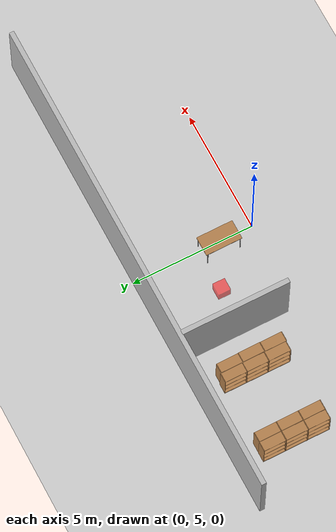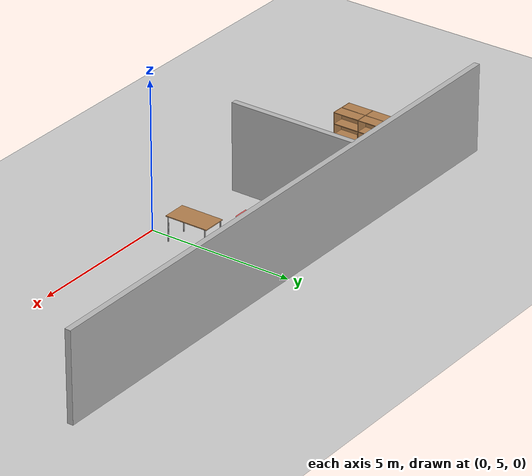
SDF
<sdf version="1.7">
 <world name="library_world">
  <model name="ground_plane">
   <static>1</static>
   <link name="link">
    <collision name="collision">
     <geometry><plane><normal>0 0 1</normal><size>100 100</size></plane></geometry>
     <surface>
      <contact><collide_bitmask>65535</collide_bitmask></contact>
      <friction><ode><mu>100</mu><mu2>50</mu2></ode></friction>
     </surface>
    </collision>
    <visual name="visual">
     <cast_shadows>0</cast_shadows>
     <geometry><plane><normal>0 0 1</normal><size>100 100</size></plane></geometry>
     <material>
      <script><uri>file://media/materials/scripts/gazebo.material</uri><name>Gazebo/Grey</name></script>
     </material>
    </visual>
   </link>
  </model>
  <model name="wall_back">
   <static>1</static>
   <link name="link"><visual name="visual"><geometry><box><size>20 0.2 3</size></box></geometry></visual></link>
   <pose>0 9.89894 1.5 0 -0 0</pose>
  </model>
  <model name="bookshelf_0_clone_2_clone">
   <static>1</static>
   <link name="link">
    <inertial><mass>1</mass></inertial>
    <collision name="back">
     <pose>0 0.005 0.6 0 -0 0</pose>
     <geometry><box><size>0.9 0.01 1.2</size></box></geometry>
    </collision>
    <visual name="visual1">
     <pose>0 0.005 0.6 0 -0 0</pose>
     <geometry><box><size>0.9 0.01 1.2</size></box></geometry>
     <material>
      <script><uri>file://media/materials/scripts/gazebo.material</uri><name>Gazebo/Wood</name></script>
     </material>
    </visual>
    <collision name="left_side">
     <pose>0.45 -0.195 0.6 0 -0 0</pose>
     <geometry><box><size>0.02 0.4 1.2</size></box></geometry>
    </collision>
    <visual name="visual2">
     <pose>0.45 -0.195 0.6 0 -0 0</pose>
     <geometry><box><size>0.02 0.4 1.2</size></box></geometry>
     <material>
      <script><uri>file://media/materials/scripts/gazebo.material</uri><name>Gazebo/Wood</name></script>
     </material>
    </visual>
    <collision name="right_side">
     <pose>-0.45 -0.195 0.6 0 -0 0</pose>
     <geometry><box><size>0.02 0.4 1.2</size></box></geometry>
    </collision>
    <visual name="visual3">
     <pose>-0.45 -0.195 0.6 0 -0 0</pose>
     <geometry><box><size>0.02 0.4 1.2</size></box></geometry>
     <material>
      <script><uri>file://media/materials/scripts/gazebo.material</uri><name>Gazebo/Wood</name></script>
     </material>
    </visual>
    <collision name="bottom">
     <pose>0 -0.195 0.03 0 -0 0</pose>
     <geometry><box><size>0.88 0.4 0.06</size></box></geometry>
    </collision>
    <visual name="visual4">
     <pose>0 -0.195 0.03 0 -0 0</pose>
     <geometry><box><size>0.88 0.4 0.06</size></box></geometry>
     <material>
      <script><uri>file://media/materials/scripts/gazebo.material</uri><name>Gazebo/Wood</name></script>
     </material>
    </visual>
    <collision name="top">
     <pose>0 -0.195 1.19 0 -0 0</pose>
     <geometry><box><size>0.88 0.4 0.02</size></box></geometry>
    </collision>
    <visual name="visual5">
     <pose>0 -0.195 1.19 0 -0 0</pose>
     <geometry><box><size>0.88 0.4 0.02</size></box></geometry>
     <material>
      <script><uri>file://media/materials/scripts/gazebo.material</uri><name>Gazebo/Wood</name></script>
     </material>
    </visual>
    <collision name="low_shelf">
     <pose>0 -0.195 0.43 0 -0 0</pose>
     <geometry><box><size>0.88 0.4 0.02</size></box></geometry>
    </collision>
    <visual name="visual6">
     <pose>0 -0.195 0.43 0 -0 0</pose>
     <geometry><box><size>0.88 0.4 0.02</size></box></geometry>
     <material>
      <script><uri>file://media/materials/scripts/gazebo.material</uri><name>Gazebo/Wood</name></script>
     </material>
    </visual>
    <collision name="high_shelf">
     <pose>0 -0.195 0.8 0 -0 0</pose>
     <geometry><box><size>0.88 0.4 0.02</size></box></geometry>
    </collision>
    <visual name="visual7">
     <pose>0 -0.195 0.8 0 -0 0</pose>
     <geometry><box><size>0.88 0.4 0.02</size></box></geometry>
     <material>
      <script><uri>file://media/materials/scripts/gazebo.material</uri><name>Gazebo/Wood</name></script>
     </material>
    </visual>
   </link>
   <pose>-7.9828 8.52336 0 0 -0 1.57381</pose>
  </model>
  <model name="bookshelf_0_clone_2_clone_0">
   <static>1</static>
   <link name="link">
    <inertial><mass>1</mass></inertial>
    <collision name="back">
     <pose>0 0.005 0.6 0 -0 0</pose>
     <geometry><box><size>0.9 0.01 1.2</size></box></geometry>
    </collision>
    <visual name="visual1">
     <pose>0 0.005 0.6 0 -0 0</pose>
     <geometry><box><size>0.9 0.01 1.2</size></box></geometry>
     <material>
      <script><uri>file://media/materials/scripts/gazebo.material</uri><name>Gazebo/Wood</name></script>
     </material>
    </visual>
    <collision name="left_side">
     <pose>0.45 -0.195 0.6 0 -0 0</pose>
     <geometry><box><size>0.02 0.4 1.2</size></box></geometry>
    </collision>
    <visual name="visual2">
     <pose>0.45 -0.195 0.6 0 -0 0</pose>
     <geometry><box><size>0.02 0.4 1.2</size></box></geometry>
     <material>
      <script><uri>file://media/materials/scripts/gazebo.material</uri><name>Gazebo/Wood</name></script>
     </material>
    </visual>
    <collision name="right_side">
     <pose>-0.45 -0.195 0.6 0 -0 0</pose>
     <geometry><box><size>0.02 0.4 1.2</size></box></geometry>
    </collision>
    <visual name="visual3">
     <pose>-0.45 -0.195 0.6 0 -0 0</pose>
     <geometry><box><size>0.02 0.4 1.2</size></box></geometry>
     <material>
      <script><uri>file://media/materials/scripts/gazebo.material</uri><name>Gazebo/Wood</name></script>
     </material>
    </visual>
    <collision name="bottom">
     <pose>0 -0.195 0.03 0 -0 0</pose>
     <geometry><box><size>0.88 0.4 0.06</size></box></geometry>
    </collision>
    <visual name="visual4">
     <pose>0 -0.195 0.03 0 -0 0</pose>
     <geometry><box><size>0.88 0.4 0.06</size></box></geometry>
     <material>
      <script><uri>file://media/materials/scripts/gazebo.material</uri><name>Gazebo/Wood</name></script>
     </material>
    </visual>
    <collision name="top">
     <pose>0 -0.195 1.19 0 -0 0</pose>
     <geometry><box><size>0.88 0.4 0.02</size></box></geometry>
    </collision>
    <visual name="visual5">
     <pose>0 -0.195 1.19 0 -0 0</pose>
     <geometry><box><size>0.88 0.4 0.02</size></box></geometry>
     <material>
      <script><uri>file://media/materials/scripts/gazebo.material</uri><name>Gazebo/Wood</name></script>
     </material>
    </visual>
    <collision name="low_shelf">
     <pose>0 -0.195 0.43 0 -0 0</pose>
     <geometry><box><size>0.88 0.4 0.02</size></box></geometry>
    </collision>
    <visual name="visual6">
     <pose>0 -0.195 0.43 0 -0 0</pose>
     <geometry><box><size>0.88 0.4 0.02</size></box></geometry>
     <material>
      <script><uri>file://media/materials/scripts/gazebo.material</uri><name>Gazebo/Wood</name></script>
     </material>
    </visual>
    <collision name="high_shelf">
     <pose>0 -0.195 0.8 0 -0 0</pose>
     <geometry><box><size>0.88 0.4 0.02</size></box></geometry>
    </collision>
    <visual name="visual7">
     <pose>0 -0.195 0.8 0 -0 0</pose>
     <geometry><box><size>0.88 0.4 0.02</size></box></geometry>
     <material>
      <script><uri>file://media/materials/scripts/gazebo.material</uri><name>Gazebo/Wood</name></script>
     </material>
    </visual>
   </link>
   <pose>-7.9819 7.61403 0 0 -0 1.57381</pose>
  </model>
  <model name="bookshelf_0_clone_2_clone_1">
   <static>1</static>
   <link name="link">
    <inertial><mass>1</mass></inertial>
    <collision name="back">
     <pose>0 0.005 0.6 0 -0 0</pose>
     <geometry><box><size>0.9 0.01 1.2</size></box></geometry>
    </collision>
    <visual name="visual1">
     <pose>0 0.005 0.6 0 -0 0</pose>
     <geometry><box><size>0.9 0.01 1.2</size></box></geometry>
     <material>
      <script><uri>file://media/materials/scripts/gazebo.material</uri><name>Gazebo/Wood</name></script>
     </material>
    </visual>
    <collision name="left_side">
     <pose>0.45 -0.195 0.6 0 -0 0</pose>
     <geometry><box><size>0.02 0.4 1.2</size></box></geometry>
    </collision>
    <visual name="visual2">
     <pose>0.45 -0.195 0.6 0 -0 0</pose>
     <geometry><box><size>0.02 0.4 1.2</size></box></geometry>
     <material>
      <script><uri>file://media/materials/scripts/gazebo.material</uri><name>Gazebo/Wood</name></script>
     </material>
    </visual>
    <collision name="right_side">
     <pose>-0.45 -0.195 0.6 0 -0 0</pose>
     <geometry><box><size>0.02 0.4 1.2</size></box></geometry>
    </collision>
    <visual name="visual3">
     <pose>-0.45 -0.195 0.6 0 -0 0</pose>
     <geometry><box><size>0.02 0.4 1.2</size></box></geometry>
     <material>
      <script><uri>file://media/materials/scripts/gazebo.material</uri><name>Gazebo/Wood</name></script>
     </material>
    </visual>
    <collision name="bottom">
     <pose>0 -0.195 0.03 0 -0 0</pose>
     <geometry><box><size>0.88 0.4 0.06</size></box></geometry>
    </collision>
    <visual name="visual4">
     <pose>0 -0.195 0.03 0 -0 0</pose>
     <geometry><box><size>0.88 0.4 0.06</size></box></geometry>
     <material>
      <script><uri>file://media/materials/scripts/gazebo.material</uri><name>Gazebo/Wood</name></script>
     </material>
    </visual>
    <collision name="top">
     <pose>0 -0.195 1.19 0 -0 0</pose>
     <geometry><box><size>0.88 0.4 0.02</size></box></geometry>
    </collision>
    <visual name="visual5">
     <pose>0 -0.195 1.19 0 -0 0</pose>
     <geometry><box><size>0.88 0.4 0.02</size></box></geometry>
     <material>
      <script><uri>file://media/materials/scripts/gazebo.material</uri><name>Gazebo/Wood</name></script>
     </material>
    </visual>
    <collision name="low_shelf">
     <pose>0 -0.195 0.43 0 -0 0</pose>
     <geometry><box><size>0.88 0.4 0.02</size></box></geometry>
    </collision>
    <visual name="visual6">
     <pose>0 -0.195 0.43 0 -0 0</pose>
     <geometry><box><size>0.88 0.4 0.02</size></box></geometry>
     <material>
      <script><uri>file://media/materials/scripts/gazebo.material</uri><name>Gazebo/Wood</name></script>
     </material>
    </visual>
    <collision name="high_shelf">
     <pose>0 -0.195 0.8 0 -0 0</pose>
     <geometry><box><size>0.88 0.4 0.02</size></box></geometry>
    </collision>
    <visual name="visual7">
     <pose>0 -0.195 0.8 0 -0 0</pose>
     <geometry><box><size>0.88 0.4 0.02</size></box></geometry>
     <material>
      <script><uri>file://media/materials/scripts/gazebo.material</uri><name>Gazebo/Wood</name></script>
     </material>
    </visual>
   </link>
   <pose>-7.98238 6.70319 0 0 -0 1.57381</pose>
  </model>
  <model name="bookshelf_0_clone_8_clone">
   <static>1</static>
   <link name="link">
    <inertial><mass>1</mass></inertial>
    <collision name="back">
     <pose>0 0.005 0.6 0 -0 0</pose>
     <geometry><box><size>0.9 0.01 1.2</size></box></geometry>
    </collision>
    <visual name="visual1">
     <pose>0 0.005 0.6 0 -0 0</pose>
     <geometry><box><size>0.9 0.01 1.2</size></box></geometry>
     <material>
      <script><uri>file://media/materials/scripts/gazebo.material</uri><name>Gazebo/Wood</name></script>
     </material>
    </visual>
    <collision name="left_side">
     <pose>0.45 -0.195 0.6 0 -0 0</pose>
     <geometry><box><size>0.02 0.4 1.2</size></box></geometry>
    </collision>
    <visual name="visual2">
     <pose>0.45 -0.195 0.6 0 -0 0</pose>
     <geometry><box><size>0.02 0.4 1.2</size></box></geometry>
     <material>
      <script><uri>file://media/materials/scripts/gazebo.material</uri><name>Gazebo/Wood</name></script>
     </material>
    </visual>
    <collision name="right_side">
     <pose>-0.45 -0.195 0.6 0 -0 0</pose>
     <geometry><box><size>0.02 0.4 1.2</size></box></geometry>
    </collision>
    <visual name="visual3">
     <pose>-0.45 -0.195 0.6 0 -0 0</pose>
     <geometry><box><size>0.02 0.4 1.2</size></box></geometry>
     <material>
      <script><uri>file://media/materials/scripts/gazebo.material</uri><name>Gazebo/Wood</name></script>
     </material>
    </visual>
    <collision name="bottom">
     <pose>0 -0.195 0.03 0 -0 0</pose>
     <geometry><box><size>0.88 0.4 0.06</size></box></geometry>
    </collision>
    <visual name="visual4">
     <pose>0 -0.195 0.03 0 -0 0</pose>
     <geometry><box><size>0.88 0.4 0.06</size></box></geometry>
     <material>
      <script><uri>file://media/materials/scripts/gazebo.material</uri><name>Gazebo/Wood</name></script>
     </material>
    </visual>
    <collision name="top">
     <pose>0 -0.195 1.19 0 -0 0</pose>
     <geometry><box><size>0.88 0.4 0.02</size></box></geometry>
    </collision>
    <visual name="visual5">
     <pose>0 -0.195 1.19 0 -0 0</pose>
     <geometry><box><size>0.88 0.4 0.02</size></box></geometry>
     <material>
      <script><uri>file://media/materials/scripts/gazebo.material</uri><name>Gazebo/Wood</name></script>
     </material>
    </visual>
    <collision name="low_shelf">
     <pose>0 -0.195 0.43 0 -0 0</pose>
     <geometry><box><size>0.88 0.4 0.02</size></box></geometry>
    </collision>
    <visual name="visual6">
     <pose>0 -0.195 0.43 0 -0 0</pose>
     <geometry><box><size>0.88 0.4 0.02</size></box></geometry>
     <material>
      <script><uri>file://media/materials/scripts/gazebo.material</uri><name>Gazebo/Wood</name></script>
     </material>
    </visual>
    <collision name="high_shelf">
     <pose>0 -0.195 0.8 0 -0 0</pose>
     <geometry><box><size>0.88 0.4 0.02</size></box></geometry>
    </collision>
    <visual name="visual7">
     <pose>0 -0.195 0.8 0 -0 0</pose>
     <geometry><box><size>0.88 0.4 0.02</size></box></geometry>
     <material>
      <script><uri>file://media/materials/scripts/gazebo.material</uri><name>Gazebo/Wood</name></script>
     </material>
    </visual>
   </link>
   <pose>-8.00188 8.53017 0 0 0 -1.57537</pose>
  </model>
  <model name="bookshelf_0_clone_8_clone_0">
   <static>1</static>
   <link name="link">
    <inertial><mass>1</mass></inertial>
    <collision name="back">
     <pose>0 0.005 0.6 0 -0 0</pose>
     <geometry><box><size>0.9 0.01 1.2</size></box></geometry>
    </collision>
    <visual name="visual1">
     <pose>0 0.005 0.6 0 -0 0</pose>
     <geometry><box><size>0.9 0.01 1.2</size></box></geometry>
     <material>
      <script><uri>file://media/materials/scripts/gazebo.material</uri><name>Gazebo/Wood</name></script>
     </material>
    </visual>
    <collision name="left_side">
     <pose>0.45 -0.195 0.6 0 -0 0</pose>
     <geometry><box><size>0.02 0.4 1.2</size></box></geometry>
    </collision>
    <visual name="visual2">
     <pose>0.45 -0.195 0.6 0 -0 0</pose>
     <geometry><box><size>0.02 0.4 1.2</size></box></geometry>
     <material>
      <script><uri>file://media/materials/scripts/gazebo.material</uri><name>Gazebo/Wood</name></script>
     </material>
    </visual>
    <collision name="right_side">
     <pose>-0.45 -0.195 0.6 0 -0 0</pose>
     <geometry><box><size>0.02 0.4 1.2</size></box></geometry>
    </collision>
    <visual name="visual3">
     <pose>-0.45 -0.195 0.6 0 -0 0</pose>
     <geometry><box><size>0.02 0.4 1.2</size></box></geometry>
     <material>
      <script><uri>file://media/materials/scripts/gazebo.material</uri><name>Gazebo/Wood</name></script>
     </material>
    </visual>
    <collision name="bottom">
     <pose>0 -0.195 0.03 0 -0 0</pose>
     <geometry><box><size>0.88 0.4 0.06</size></box></geometry>
    </collision>
    <visual name="visual4">
     <pose>0 -0.195 0.03 0 -0 0</pose>
     <geometry><box><size>0.88 0.4 0.06</size></box></geometry>
     <material>
      <script><uri>file://media/materials/scripts/gazebo.material</uri><name>Gazebo/Wood</name></script>
     </material>
    </visual>
    <collision name="top">
     <pose>0 -0.195 1.19 0 -0 0</pose>
     <geometry><box><size>0.88 0.4 0.02</size></box></geometry>
    </collision>
    <visual name="visual5">
     <pose>0 -0.195 1.19 0 -0 0</pose>
     <geometry><box><size>0.88 0.4 0.02</size></box></geometry>
     <material>
      <script><uri>file://media/materials/scripts/gazebo.material</uri><name>Gazebo/Wood</name></script>
     </material>
    </visual>
    <collision name="low_shelf">
     <pose>0 -0.195 0.43 0 -0 0</pose>
     <geometry><box><size>0.88 0.4 0.02</size></box></geometry>
    </collision>
    <visual name="visual6">
     <pose>0 -0.195 0.43 0 -0 0</pose>
     <geometry><box><size>0.88 0.4 0.02</size></box></geometry>
     <material>
      <script><uri>file://media/materials/scripts/gazebo.material</uri><name>Gazebo/Wood</name></script>
     </material>
    </visual>
    <collision name="high_shelf">
     <pose>0 -0.195 0.8 0 -0 0</pose>
     <geometry><box><size>0.88 0.4 0.02</size></box></geometry>
    </collision>
    <visual name="visual7">
     <pose>0 -0.195 0.8 0 -0 0</pose>
     <geometry><box><size>0.88 0.4 0.02</size></box></geometry>
     <material>
      <script><uri>file://media/materials/scripts/gazebo.material</uri><name>Gazebo/Wood</name></script>
     </material>
    </visual>
   </link>
   <pose>-8.00429 7.61626 0 0 0 -1.57537</pose>
  </model>
  <model name="bookshelf_0_clone_8_clone_1">
   <static>1</static>
   <link name="link">
    <inertial><mass>1</mass></inertial>
    <collision name="back">
     <pose>0 0.005 0.6 0 -0 0</pose>
     <geometry><box><size>0.9 0.01 1.2</size></box></geometry>
    </collision>
    <visual name="visual1">
     <pose>0 0.005 0.6 0 -0 0</pose>
     <geometry><box><size>0.9 0.01 1.2</size></box></geometry>
     <material>
      <script><uri>file://media/materials/scripts/gazebo.material</uri><name>Gazebo/Wood</name></script>
     </material>
    </visual>
    <collision name="left_side">
     <pose>0.45 -0.195 0.6 0 -0 0</pose>
     <geometry><box><size>0.02 0.4 1.2</size></box></geometry>
    </collision>
    <visual name="visual2">
     <pose>0.45 -0.195 0.6 0 -0 0</pose>
     <geometry><box><size>0.02 0.4 1.2</size></box></geometry>
     <material>
      <script><uri>file://media/materials/scripts/gazebo.material</uri><name>Gazebo/Wood</name></script>
     </material>
    </visual>
    <collision name="right_side">
     <pose>-0.45 -0.195 0.6 0 -0 0</pose>
     <geometry><box><size>0.02 0.4 1.2</size></box></geometry>
    </collision>
    <visual name="visual3">
     <pose>-0.45 -0.195 0.6 0 -0 0</pose>
     <geometry><box><size>0.02 0.4 1.2</size></box></geometry>
     <material>
      <script><uri>file://media/materials/scripts/gazebo.material</uri><name>Gazebo/Wood</name></script>
     </material>
    </visual>
    <collision name="bottom">
     <pose>0 -0.195 0.03 0 -0 0</pose>
     <geometry><box><size>0.88 0.4 0.06</size></box></geometry>
    </collision>
    <visual name="visual4">
     <pose>0 -0.195 0.03 0 -0 0</pose>
     <geometry><box><size>0.88 0.4 0.06</size></box></geometry>
     <material>
      <script><uri>file://media/materials/scripts/gazebo.material</uri><name>Gazebo/Wood</name></script>
     </material>
    </visual>
    <collision name="top">
     <pose>0 -0.195 1.19 0 -0 0</pose>
     <geometry><box><size>0.88 0.4 0.02</size></box></geometry>
    </collision>
    <visual name="visual5">
     <pose>0 -0.195 1.19 0 -0 0</pose>
     <geometry><box><size>0.88 0.4 0.02</size></box></geometry>
     <material>
      <script><uri>file://media/materials/scripts/gazebo.material</uri><name>Gazebo/Wood</name></script>
     </material>
    </visual>
    <collision name="low_shelf">
     <pose>0 -0.195 0.43 0 -0 0</pose>
     <geometry><box><size>0.88 0.4 0.02</size></box></geometry>
    </collision>
    <visual name="visual6">
     <pose>0 -0.195 0.43 0 -0 0</pose>
     <geometry><box><size>0.88 0.4 0.02</size></box></geometry>
     <material>
      <script><uri>file://media/materials/scripts/gazebo.material</uri><name>Gazebo/Wood</name></script>
     </material>
    </visual>
    <collision name="high_shelf">
     <pose>0 -0.195 0.8 0 -0 0</pose>
     <geometry><box><size>0.88 0.4 0.02</size></box></geometry>
    </collision>
    <visual name="visual7">
     <pose>0 -0.195 0.8 0 -0 0</pose>
     <geometry><box><size>0.88 0.4 0.02</size></box></geometry>
     <material>
      <script><uri>file://media/materials/scripts/gazebo.material</uri><name>Gazebo/Wood</name></script>
     </material>
    </visual>
   </link>
   <pose>-8.00535 6.7085 0 0 0 -1.57537</pose>
  </model>
  <model name="bookshelf_0_clone_8_clone_4">
   <static>1</static>
   <link name="link">
    <inertial><mass>1</mass></inertial>
    <collision name="back">
     <pose>0 0.005 0.6 0 -0 0</pose>
     <geometry><box><size>0.9 0.01 1.2</size></box></geometry>
    </collision>
    <visual name="visual1">
     <pose>0 0.005 0.6 0 -0 0</pose>
     <geometry><box><size>0.9 0.01 1.2</size></box></geometry>
     <material>
      <script><uri>file://media/materials/scripts/gazebo.material</uri><name>Gazebo/Wood</name></script>
     </material>
    </visual>
    <collision name="left_side">
     <pose>0.45 -0.195 0.6 0 -0 0</pose>
     <geometry><box><size>0.02 0.4 1.2</size></box></geometry>
    </collision>
    <visual name="visual2">
     <pose>0.45 -0.195 0.6 0 -0 0</pose>
     <geometry><box><size>0.02 0.4 1.2</size></box></geometry>
     <material>
      <script><uri>file://media/materials/scripts/gazebo.material</uri><name>Gazebo/Wood</name></script>
     </material>
    </visual>
    <collision name="right_side">
     <pose>-0.45 -0.195 0.6 0 -0 0</pose>
     <geometry><box><size>0.02 0.4 1.2</size></box></geometry>
    </collision>
    <visual name="visual3">
     <pose>-0.45 -0.195 0.6 0 -0 0</pose>
     <geometry><box><size>0.02 0.4 1.2</size></box></geometry>
     <material>
      <script><uri>file://media/materials/scripts/gazebo.material</uri><name>Gazebo/Wood</name></script>
     </material>
    </visual>
    <collision name="bottom">
     <pose>0 -0.195 0.03 0 -0 0</pose>
     <geometry><box><size>0.88 0.4 0.06</size></box></geometry>
    </collision>
    <visual name="visual4">
     <pose>0 -0.195 0.03 0 -0 0</pose>
     <geometry><box><size>0.88 0.4 0.06</size></box></geometry>
     <material>
      <script><uri>file://media/materials/scripts/gazebo.material</uri><name>Gazebo/Wood</name></script>
     </material>
    </visual>
    <collision name="top">
     <pose>0 -0.195 1.19 0 -0 0</pose>
     <geometry><box><size>0.88 0.4 0.02</size></box></geometry>
    </collision>
    <visual name="visual5">
     <pose>0 -0.195 1.19 0 -0 0</pose>
     <geometry><box><size>0.88 0.4 0.02</size></box></geometry>
     <material>
      <script><uri>file://media/materials/scripts/gazebo.material</uri><name>Gazebo/Wood</name></script>
     </material>
    </visual>
    <collision name="low_shelf">
     <pose>0 -0.195 0.43 0 -0 0</pose>
     <geometry><box><size>0.88 0.4 0.02</size></box></geometry>
    </collision>
    <visual name="visual6">
     <pose>0 -0.195 0.43 0 -0 0</pose>
     <geometry><box><size>0.88 0.4 0.02</size></box></geometry>
     <material>
      <script><uri>file://media/materials/scripts/gazebo.material</uri><name>Gazebo/Wood</name></script>
     </material>
    </visual>
    <collision name="high_shelf">
     <pose>0 -0.195 0.8 0 -0 0</pose>
     <geometry><box><size>0.88 0.4 0.02</size></box></geometry>
    </collision>
    <visual name="visual7">
     <pose>0 -0.195 0.8 0 -0 0</pose>
     <geometry><box><size>0.88 0.4 0.02</size></box></geometry>
     <material>
      <script><uri>file://media/materials/scripts/gazebo.material</uri><name>Gazebo/Wood</name></script>
     </material>
    </visual>
   </link>
   <pose>-5.00485 8.53788 0 0 0 -1.57537</pose>
  </model>
  <model name="bookshelf_0_clone_8_clone_5">
   <static>1</static>
   <link name="link">
    <inertial><mass>1</mass></inertial>
    <collision name="back">
     <pose>0 0.005 0.6 0 -0 0</pose>
     <geometry><box><size>0.9 0.01 1.2</size></box></geometry>
    </collision>
    <visual name="visual1">
     <pose>0 0.005 0.6 0 -0 0</pose>
     <geometry><box><size>0.9 0.01 1.2</size></box></geometry>
     <material>
      <script><uri>file://media/materials/scripts/gazebo.material</uri><name>Gazebo/Wood</name></script>
     </material>
    </visual>
    <collision name="left_side">
     <pose>0.45 -0.195 0.6 0 -0 0</pose>
     <geometry><box><size>0.02 0.4 1.2</size></box></geometry>
    </collision>
    <visual name="visual2">
     <pose>0.45 -0.195 0.6 0 -0 0</pose>
     <geometry><box><size>0.02 0.4 1.2</size></box></geometry>
     <material>
      <script><uri>file://media/materials/scripts/gazebo.material</uri><name>Gazebo/Wood</name></script>
     </material>
    </visual>
    <collision name="right_side">
     <pose>-0.45 -0.195 0.6 0 -0 0</pose>
     <geometry><box><size>0.02 0.4 1.2</size></box></geometry>
    </collision>
    <visual name="visual3">
     <pose>-0.45 -0.195 0.6 0 -0 0</pose>
     <geometry><box><size>0.02 0.4 1.2</size></box></geometry>
     <material>
      <script><uri>file://media/materials/scripts/gazebo.material</uri><name>Gazebo/Wood</name></script>
     </material>
    </visual>
    <collision name="bottom">
     <pose>0 -0.195 0.03 0 -0 0</pose>
     <geometry><box><size>0.88 0.4 0.06</size></box></geometry>
    </collision>
    <visual name="visual4">
     <pose>0 -0.195 0.03 0 -0 0</pose>
     <geometry><box><size>0.88 0.4 0.06</size></box></geometry>
     <material>
      <script><uri>file://media/materials/scripts/gazebo.material</uri><name>Gazebo/Wood</name></script>
     </material>
    </visual>
    <collision name="top">
     <pose>0 -0.195 1.19 0 -0 0</pose>
     <geometry><box><size>0.88 0.4 0.02</size></box></geometry>
    </collision>
    <visual name="visual5">
     <pose>0 -0.195 1.19 0 -0 0</pose>
     <geometry><box><size>0.88 0.4 0.02</size></box></geometry>
     <material>
      <script><uri>file://media/materials/scripts/gazebo.material</uri><name>Gazebo/Wood</name></script>
     </material>
    </visual>
    <collision name="low_shelf">
     <pose>0 -0.195 0.43 0 -0 0</pose>
     <geometry><box><size>0.88 0.4 0.02</size></box></geometry>
    </collision>
    <visual name="visual6">
     <pose>0 -0.195 0.43 0 -0 0</pose>
     <geometry><box><size>0.88 0.4 0.02</size></box></geometry>
     <material>
      <script><uri>file://media/materials/scripts/gazebo.material</uri><name>Gazebo/Wood</name></script>
     </material>
    </visual>
    <collision name="high_shelf">
     <pose>0 -0.195 0.8 0 -0 0</pose>
     <geometry><box><size>0.88 0.4 0.02</size></box></geometry>
    </collision>
    <visual name="visual7">
     <pose>0 -0.195 0.8 0 -0 0</pose>
     <geometry><box><size>0.88 0.4 0.02</size></box></geometry>
     <material>
      <script><uri>file://media/materials/scripts/gazebo.material</uri><name>Gazebo/Wood</name></script>
     </material>
    </visual>
   </link>
   <pose>-5.00895 7.64 0 0 0 -1.57537</pose>
  </model>
  <model name="bookshelf_0_clone_8_clone_6">
   <static>1</static>
   <link name="link">
    <inertial><mass>1</mass></inertial>
    <collision name="back">
     <pose>0 0.005 0.6 0 -0 0</pose>
     <geometry><box><size>0.9 0.01 1.2</size></box></geometry>
    </collision>
    <visual name="visual1">
     <pose>0 0.005 0.6 0 -0 0</pose>
     <geometry><box><size>0.9 0.01 1.2</size></box></geometry>
     <material>
      <script><uri>file://media/materials/scripts/gazebo.material</uri><name>Gazebo/Wood</name></script>
     </material>
    </visual>
    <collision name="left_side">
     <pose>0.45 -0.195 0.6 0 -0 0</pose>
     <geometry><box><size>0.02 0.4 1.2</size></box></geometry>
    </collision>
    <visual name="visual2">
     <pose>0.45 -0.195 0.6 0 -0 0</pose>
     <geometry><box><size>0.02 0.4 1.2</size></box></geometry>
     <material>
      <script><uri>file://media/materials/scripts/gazebo.material</uri><name>Gazebo/Wood</name></script>
     </material>
    </visual>
    <collision name="right_side">
     <pose>-0.45 -0.195 0.6 0 -0 0</pose>
     <geometry><box><size>0.02 0.4 1.2</size></box></geometry>
    </collision>
    <visual name="visual3">
     <pose>-0.45 -0.195 0.6 0 -0 0</pose>
     <geometry><box><size>0.02 0.4 1.2</size></box></geometry>
     <material>
      <script><uri>file://media/materials/scripts/gazebo.material</uri><name>Gazebo/Wood</name></script>
     </material>
    </visual>
    <collision name="bottom">
     <pose>0 -0.195 0.03 0 -0 0</pose>
     <geometry><box><size>0.88 0.4 0.06</size></box></geometry>
    </collision>
    <visual name="visual4">
     <pose>0 -0.195 0.03 0 -0 0</pose>
     <geometry><box><size>0.88 0.4 0.06</size></box></geometry>
     <material>
      <script><uri>file://media/materials/scripts/gazebo.material</uri><name>Gazebo/Wood</name></script>
     </material>
    </visual>
    <collision name="top">
     <pose>0 -0.195 1.19 0 -0 0</pose>
     <geometry><box><size>0.88 0.4 0.02</size></box></geometry>
    </collision>
    <visual name="visual5">
     <pose>0 -0.195 1.19 0 -0 0</pose>
     <geometry><box><size>0.88 0.4 0.02</size></box></geometry>
     <material>
      <script><uri>file://media/materials/scripts/gazebo.material</uri><name>Gazebo/Wood</name></script>
     </material>
    </visual>
    <collision name="low_shelf">
     <pose>0 -0.195 0.43 0 -0 0</pose>
     <geometry><box><size>0.88 0.4 0.02</size></box></geometry>
    </collision>
    <visual name="visual6">
     <pose>0 -0.195 0.43 0 -0 0</pose>
     <geometry><box><size>0.88 0.4 0.02</size></box></geometry>
     <material>
      <script><uri>file://media/materials/scripts/gazebo.material</uri><name>Gazebo/Wood</name></script>
     </material>
    </visual>
    <collision name="high_shelf">
     <pose>0 -0.195 0.8 0 -0 0</pose>
     <geometry><box><size>0.88 0.4 0.02</size></box></geometry>
    </collision>
    <visual name="visual7">
     <pose>0 -0.195 0.8 0 -0 0</pose>
     <geometry><box><size>0.88 0.4 0.02</size></box></geometry>
     <material>
      <script><uri>file://media/materials/scripts/gazebo.material</uri><name>Gazebo/Wood</name></script>
     </material>
    </visual>
   </link>
   <pose>-5.00978 6.73031 0 0 0 -1.57537</pose>
  </model>
  <model name="bookshelf_0_clone_2_clone_4">
   <static>1</static>
   <link name="link">
    <inertial><mass>1</mass></inertial>
    <collision name="back">
     <pose>0 0.005 0.6 0 -0 0</pose>
     <geometry><box><size>0.9 0.01 1.2</size></box></geometry>
    </collision>
    <visual name="visual1">
     <pose>0 0.005 0.6 0 -0 0</pose>
     <geometry><box><size>0.9 0.01 1.2</size></box></geometry>
     <material>
      <script><uri>file://media/materials/scripts/gazebo.material</uri><name>Gazebo/Wood</name></script>
     </material>
    </visual>
    <collision name="left_side">
     <pose>0.45 -0.195 0.6 0 -0 0</pose>
     <geometry><box><size>0.02 0.4 1.2</size></box></geometry>
    </collision>
    <visual name="visual2">
     <pose>0.45 -0.195 0.6 0 -0 0</pose>
     <geometry><box><size>0.02 0.4 1.2</size></box></geometry>
     <material>
      <script><uri>file://media/materials/scripts/gazebo.material</uri><name>Gazebo/Wood</name></script>
     </material>
    </visual>
    <collision name="right_side">
     <pose>-0.45 -0.195 0.6 0 -0 0</pose>
     <geometry><box><size>0.02 0.4 1.2</size></box></geometry>
    </collision>
    <visual name="visual3">
     <pose>-0.45 -0.195 0.6 0 -0 0</pose>
     <geometry><box><size>0.02 0.4 1.2</size></box></geometry>
     <material>
      <script><uri>file://media/materials/scripts/gazebo.material</uri><name>Gazebo/Wood</name></script>
     </material>
    </visual>
    <collision name="bottom">
     <pose>0 -0.195 0.03 0 -0 0</pose>
     <geometry><box><size>0.88 0.4 0.06</size></box></geometry>
    </collision>
    <visual name="visual4">
     <pose>0 -0.195 0.03 0 -0 0</pose>
     <geometry><box><size>0.88 0.4 0.06</size></box></geometry>
     <material>
      <script><uri>file://media/materials/scripts/gazebo.material</uri><name>Gazebo/Wood</name></script>
     </material>
    </visual>
    <collision name="top">
     <pose>0 -0.195 1.19 0 -0 0</pose>
     <geometry><box><size>0.88 0.4 0.02</size></box></geometry>
    </collision>
    <visual name="visual5">
     <pose>0 -0.195 1.19 0 -0 0</pose>
     <geometry><box><size>0.88 0.4 0.02</size></box></geometry>
     <material>
      <script><uri>file://media/materials/scripts/gazebo.material</uri><name>Gazebo/Wood</name></script>
     </material>
    </visual>
    <collision name="low_shelf">
     <pose>0 -0.195 0.43 0 -0 0</pose>
     <geometry><box><size>0.88 0.4 0.02</size></box></geometry>
    </collision>
    <visual name="visual6">
     <pose>0 -0.195 0.43 0 -0 0</pose>
     <geometry><box><size>0.88 0.4 0.02</size></box></geometry>
     <material>
      <script><uri>file://media/materials/scripts/gazebo.material</uri><name>Gazebo/Wood</name></script>
     </material>
    </visual>
    <collision name="high_shelf">
     <pose>0 -0.195 0.8 0 -0 0</pose>
     <geometry><box><size>0.88 0.4 0.02</size></box></geometry>
    </collision>
    <visual name="visual7">
     <pose>0 -0.195 0.8 0 -0 0</pose>
     <geometry><box><size>0.88 0.4 0.02</size></box></geometry>
     <material>
      <script><uri>file://media/materials/scripts/gazebo.material</uri><name>Gazebo/Wood</name></script>
     </material>
    </visual>
   </link>
   <pose>-5.00561 8.50286 0 0 -0 1.57381</pose>
  </model>
  <model name="bookshelf_0_clone_2_clone_5">
   <static>1</static>
   <link name="link">
    <inertial><mass>1</mass></inertial>
    <collision name="back">
     <pose>0 0.005 0.6 0 -0 0</pose>
     <geometry><box><size>0.9 0.01 1.2</size></box></geometry>
    </collision>
    <visual name="visual1">
     <pose>0 0.005 0.6 0 -0 0</pose>
     <geometry><box><size>0.9 0.01 1.2</size></box></geometry>
     <material>
      <script><uri>file://media/materials/scripts/gazebo.material</uri><name>Gazebo/Wood</name></script>
     </material>
    </visual>
    <collision name="left_side">
     <pose>0.45 -0.195 0.6 0 -0 0</pose>
     <geometry><box><size>0.02 0.4 1.2</size></box></geometry>
    </collision>
    <visual name="visual2">
     <pose>0.45 -0.195 0.6 0 -0 0</pose>
     <geometry><box><size>0.02 0.4 1.2</size></box></geometry>
     <material>
      <script><uri>file://media/materials/scripts/gazebo.material</uri><name>Gazebo/Wood</name></script>
     </material>
    </visual>
    <collision name="right_side">
     <pose>-0.45 -0.195 0.6 0 -0 0</pose>
     <geometry><box><size>0.02 0.4 1.2</size></box></geometry>
    </collision>
    <visual name="visual3">
     <pose>-0.45 -0.195 0.6 0 -0 0</pose>
     <geometry><box><size>0.02 0.4 1.2</size></box></geometry>
     <material>
      <script><uri>file://media/materials/scripts/gazebo.material</uri><name>Gazebo/Wood</name></script>
     </material>
    </visual>
    <collision name="bottom">
     <pose>0 -0.195 0.03 0 -0 0</pose>
     <geometry><box><size>0.88 0.4 0.06</size></box></geometry>
    </collision>
    <visual name="visual4">
     <pose>0 -0.195 0.03 0 -0 0</pose>
     <geometry><box><size>0.88 0.4 0.06</size></box></geometry>
     <material>
      <script><uri>file://media/materials/scripts/gazebo.material</uri><name>Gazebo/Wood</name></script>
     </material>
    </visual>
    <collision name="top">
     <pose>0 -0.195 1.19 0 -0 0</pose>
     <geometry><box><size>0.88 0.4 0.02</size></box></geometry>
    </collision>
    <visual name="visual5">
     <pose>0 -0.195 1.19 0 -0 0</pose>
     <geometry><box><size>0.88 0.4 0.02</size></box></geometry>
     <material>
      <script><uri>file://media/materials/scripts/gazebo.material</uri><name>Gazebo/Wood</name></script>
     </material>
    </visual>
    <collision name="low_shelf">
     <pose>0 -0.195 0.43 0 -0 0</pose>
     <geometry><box><size>0.88 0.4 0.02</size></box></geometry>
    </collision>
    <visual name="visual6">
     <pose>0 -0.195 0.43 0 -0 0</pose>
     <geometry><box><size>0.88 0.4 0.02</size></box></geometry>
     <material>
      <script><uri>file://media/materials/scripts/gazebo.material</uri><name>Gazebo/Wood</name></script>
     </material>
    </visual>
    <collision name="high_shelf">
     <pose>0 -0.195 0.8 0 -0 0</pose>
     <geometry><box><size>0.88 0.4 0.02</size></box></geometry>
    </collision>
    <visual name="visual7">
     <pose>0 -0.195 0.8 0 -0 0</pose>
     <geometry><box><size>0.88 0.4 0.02</size></box></geometry>
     <material>
      <script><uri>file://media/materials/scripts/gazebo.material</uri><name>Gazebo/Wood</name></script>
     </material>
    </visual>
   </link>
   <pose>-4.99149 7.59861 0 0 -0 1.57381</pose>
  </model>
  <model name="bookshelf_0_clone_2_clone_6">
   <static>1</static>
   <link name="link">
    <inertial><mass>1</mass></inertial>
    <collision name="back">
     <pose>0 0.005 0.6 0 -0 0</pose>
     <geometry><box><size>0.9 0.01 1.2</size></box></geometry>
    </collision>
    <visual name="visual1">
     <pose>0 0.005 0.6 0 -0 0</pose>
     <geometry><box><size>0.9 0.01 1.2</size></box></geometry>
     <material>
      <script><uri>file://media/materials/scripts/gazebo.material</uri><name>Gazebo/Wood</name></script>
     </material>
    </visual>
    <collision name="left_side">
     <pose>0.45 -0.195 0.6 0 -0 0</pose>
     <geometry><box><size>0.02 0.4 1.2</size></box></geometry>
    </collision>
    <visual name="visual2">
     <pose>0.45 -0.195 0.6 0 -0 0</pose>
     <geometry><box><size>0.02 0.4 1.2</size></box></geometry>
     <material>
      <script><uri>file://media/materials/scripts/gazebo.material</uri><name>Gazebo/Wood</name></script>
     </material>
    </visual>
    <collision name="right_side">
     <pose>-0.45 -0.195 0.6 0 -0 0</pose>
     <geometry><box><size>0.02 0.4 1.2</size></box></geometry>
    </collision>
    <visual name="visual3">
     <pose>-0.45 -0.195 0.6 0 -0 0</pose>
     <geometry><box><size>0.02 0.4 1.2</size></box></geometry>
     <material>
      <script><uri>file://media/materials/scripts/gazebo.material</uri><name>Gazebo/Wood</name></script>
     </material>
    </visual>
    <collision name="bottom">
     <pose>0 -0.195 0.03 0 -0 0</pose>
     <geometry><box><size>0.88 0.4 0.06</size></box></geometry>
    </collision>
    <visual name="visual4">
     <pose>0 -0.195 0.03 0 -0 0</pose>
     <geometry><box><size>0.88 0.4 0.06</size></box></geometry>
     <material>
      <script><uri>file://media/materials/scripts/gazebo.material</uri><name>Gazebo/Wood</name></script>
     </material>
    </visual>
    <collision name="top">
     <pose>0 -0.195 1.19 0 -0 0</pose>
     <geometry><box><size>0.88 0.4 0.02</size></box></geometry>
    </collision>
    <visual name="visual5">
     <pose>0 -0.195 1.19 0 -0 0</pose>
     <geometry><box><size>0.88 0.4 0.02</size></box></geometry>
     <material>
      <script><uri>file://media/materials/scripts/gazebo.material</uri><name>Gazebo/Wood</name></script>
     </material>
    </visual>
    <collision name="low_shelf">
     <pose>0 -0.195 0.43 0 -0 0</pose>
     <geometry><box><size>0.88 0.4 0.02</size></box></geometry>
    </collision>
    <visual name="visual6">
     <pose>0 -0.195 0.43 0 -0 0</pose>
     <geometry><box><size>0.88 0.4 0.02</size></box></geometry>
     <material>
      <script><uri>file://media/materials/scripts/gazebo.material</uri><name>Gazebo/Wood</name></script>
     </material>
    </visual>
    <collision name="high_shelf">
     <pose>0 -0.195 0.8 0 -0 0</pose>
     <geometry><box><size>0.88 0.4 0.02</size></box></geometry>
    </collision>
    <visual name="visual7">
     <pose>0 -0.195 0.8 0 -0 0</pose>
     <geometry><box><size>0.88 0.4 0.02</size></box></geometry>
     <material>
      <script><uri>file://media/materials/scripts/gazebo.material</uri><name>Gazebo/Wood</name></script>
     </material>
    </visual>
   </link>
   <pose>-4.99257 6.69412 0 0 -0 1.57381</pose>
  </model>
  <model name="book_2_clone_clone">
   <static>1</static>
   <link name="link">
    <visual name="visual"><geometry><box><size>0.221094 0.032318 0.244099</size></box></geometry></visual>
   </link>
   <pose>-7.88848 7.08729 0.562007 0 -0 0</pose>
  </model>
  <model name="book_2_clone_clone_0">
   <static>1</static>
   <link name="link">
    <visual name="visual"><geometry><box><size>0.221094 0.032318 0.244099</size></box></geometry></visual>
   </link>
   <pose>-4.83963 7.8488 0.562007 0 -0 0</pose>
  </model>
  <model name="book_2_clone_clone_2">
   <static>1</static>
   <link name="link">
    <visual name="visual"><geometry><box><size>0.221094 0.032318 0.244099</size></box></geometry></visual>
   </link>
   <pose>-4.8632 6.78201 0.934382 0 -0 0</pose>
  </model>
  <model name="table">
   <static>1</static>
   <link name="link">
    <collision name="surface">
     <pose>0 0 1 0 -0 0</pose>
     <geometry><box><size>1.5 0.8 0.03</size></box></geometry>
     <surface><friction><ode><mu>0.6</mu><mu2>0.6</mu2></ode></friction></surface>
    </collision>
    <visual name="visual1">
     <pose>0 0 1 0 -0 0</pose>
     <geometry><box><size>1.5 0.8 0.03</size></box></geometry>
     <material>
      <script><uri>file://media/materials/scripts/gazebo.material</uri><name>Gazebo/Wood</name></script>
     </material>
    </visual>
    <collision name="front_left_leg">
     <pose>0.68 0.38 0.5 0 -0 0</pose>
     <geometry><cylinder><radius>0.02</radius><length>1</length></cylinder></geometry>
    </collision>
    <visual name="front_left_leg">
     <pose>0.68 0.38 0.5 0 -0 0</pose>
     <geometry><cylinder><radius>0.02</radius><length>1</length></cylinder></geometry>
     <material>
      <script><uri>file://media/materials/scripts/gazebo.material</uri><name>Gazebo/Grey</name></script>
     </material>
    </visual>
    <collision name="front_right_leg">
     <pose>0.68 -0.38 0.5 0 -0 0</pose>
     <geometry><cylinder><radius>0.02</radius><length>1</length></cylinder></geometry>
    </collision>
    <visual name="front_right_leg">
     <pose>0.68 -0.38 0.5 0 -0 0</pose>
     <geometry><cylinder><radius>0.02</radius><length>1</length></cylinder></geometry>
     <material>
      <script><uri>file://media/materials/scripts/gazebo.material</uri><name>Gazebo/Grey</name></script>
     </material>
    </visual>
    <collision name="back_right_leg">
     <pose>-0.68 -0.38 0.5 0 -0 0</pose>
     <geometry><cylinder><radius>0.02</radius><length>1</length></cylinder></geometry>
    </collision>
    <visual name="back_right_leg">
     <pose>-0.68 -0.38 0.5 0 -0 0</pose>
     <geometry><cylinder><radius>0.02</radius><length>1</length></cylinder></geometry>
     <material>
      <script><uri>file://media/materials/scripts/gazebo.material</uri><name>Gazebo/Grey</name></script>
     </material>
    </visual>
    <collision name="back_left_leg">
     <pose>-0.68 0.38 0.5 0 -0 0</pose>
     <geometry><cylinder><radius>0.02</radius><length>1</length></cylinder></geometry>
    </collision>
    <visual name="back_left_leg">
     <pose>-0.68 0.38 0.5 0 -0 0</pose>
     <geometry><cylinder><radius>0.02</radius><length>1</length></cylinder></geometry>
     <material>
      <script><uri>file://media/materials/scripts/gazebo.material</uri><name>Gazebo/Grey</name></script>
     </material>
    </visual>
   </link>
   <pose>-0.146321 6.46286 -0.174161 -0.000869 2e-06 -1.56857</pose>
  </model>
  <model name="wall_left_clone_clone_clone_1">
   <static>1</static>
   <link name="link">
    <visual name="visual"><geometry><box><size>0.2 4.41332 3</size></box></geometry></visual>
   </link>
   <pose>-3.52847 7.61812 1.5 0 -0 0</pose>
  </model>
  <model name="nav_visible_block_Chair_clone_0_clone_4">
   <static>1</static>
   <pose>-1.76686 7.21628 0.195489 0 -0 0</pose>
   <link name="link">
    <collision name="collision">
     <geometry><box><size>0.5 0.5 0.500001</size></box></geometry>
     <surface>
      <contact><collide_bitmask>65535</collide_bitmask></contact>
      <friction><ode><mu>1</mu><mu2>1</mu2></ode></friction>
     </surface>
    </collision>
    <visual name="visual">
     <transparency>0.35</transparency>
     <geometry><box><size>0.5 0.5 0.500001</size></box></geometry>
     <material><ambient>1 0.15 0.15 1</ambient><diffuse>1 0.15 0.15 1</diffuse></material>
    </visual>
   </link>
  </model>
 </world>
</sdf>
